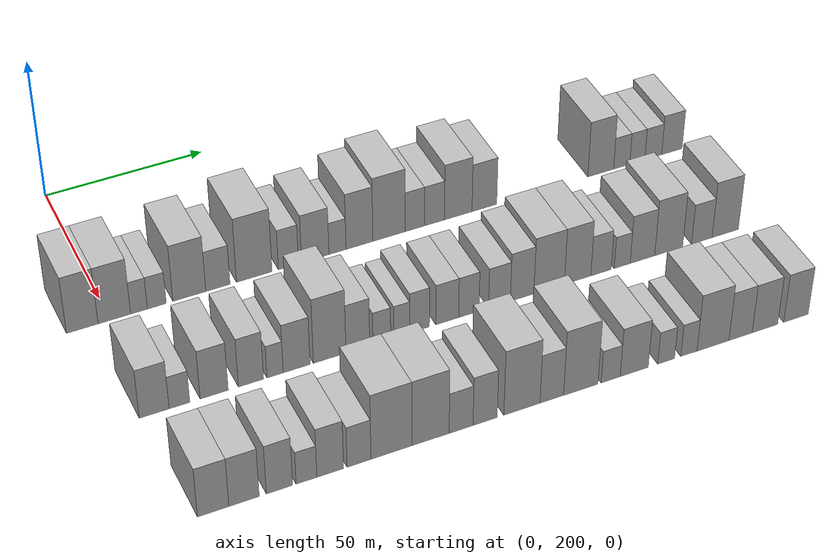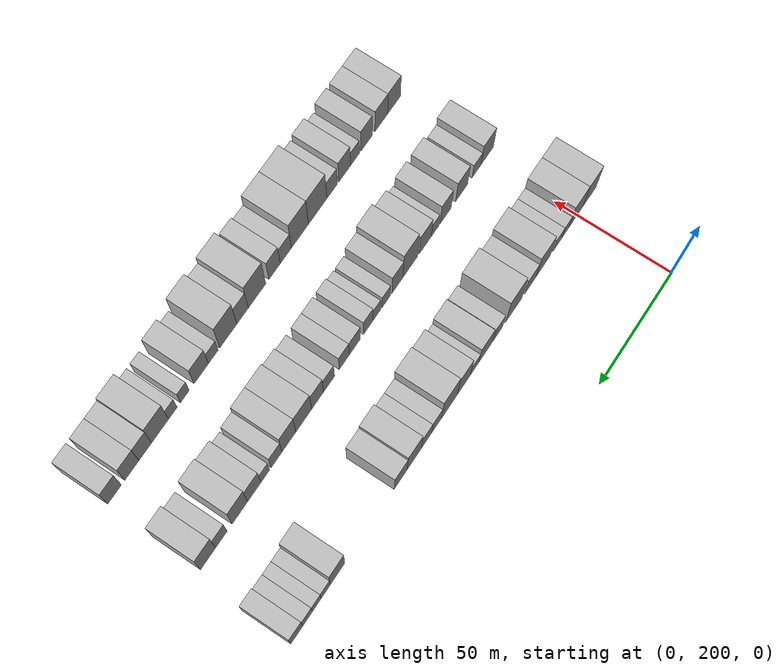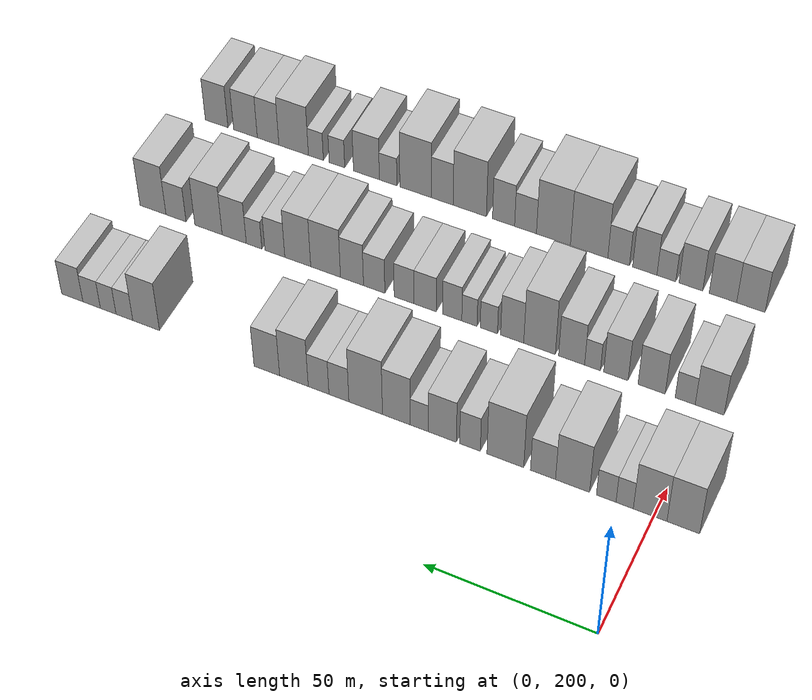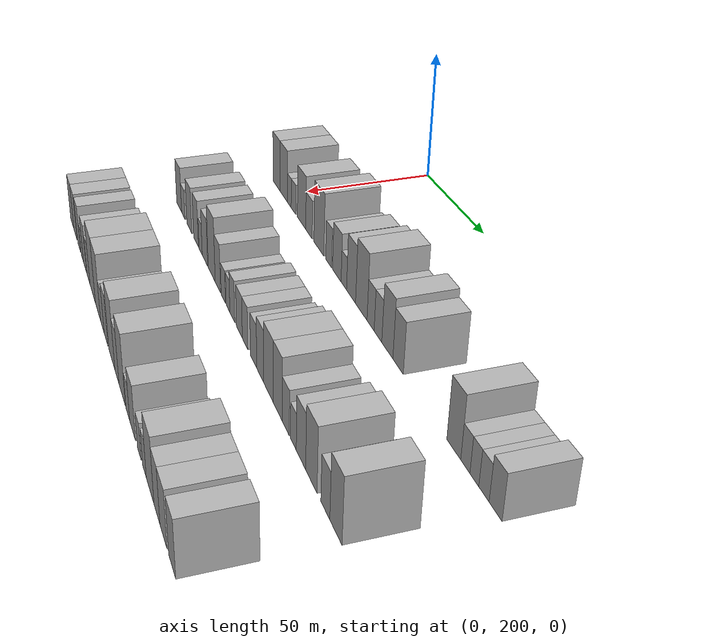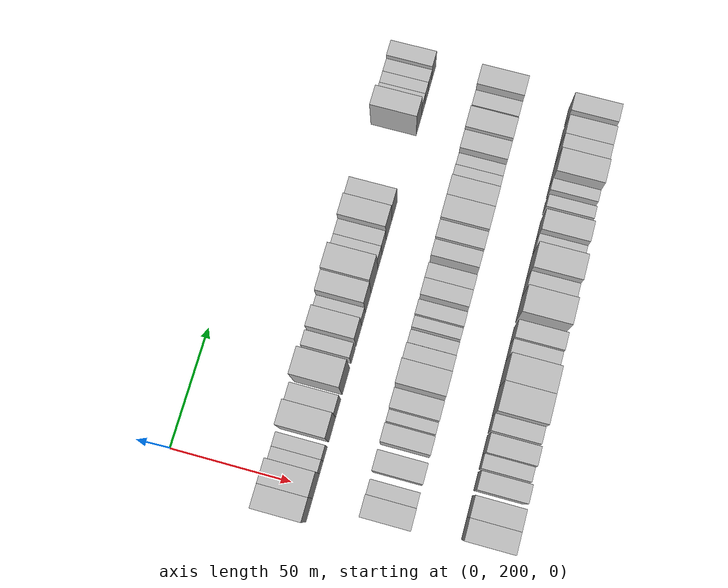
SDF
<sdf version="1.6">
 <world name="default">
  <model name="building_66">
   <static>1</static>
   <pose>50.0000 191.6155 0 0.000000 0.000000 0.000000</pose>
   <link name="link">
    <pose>0 0 10.50 0 0 0</pose>
    <collision name="collision"><geometry><box><size>20.0000 9.3782 21.0000</size></box></geometry></collision>
    <visual name="visual">
     <cast_shadows>0</cast_shadows>
     <geometry><box><size>20.0000 9.3782 21.0000</size></box></geometry>
     <material>
      <script>
       <uri>model://HANNAS_wall/materials/scripts</uri>
       <uri>model://HANNAS_wall/materials/textures</uri>
       <name>vrc/HANNAS_wall</name>
      </script>
     </material>
    </visual>
   </link>
  </model>
  <model name="building_67">
   <static>1</static>
   <pose>50.0000 201.1625 0 0.000000 0.000000 0.000000</pose>
   <link name="link">
    <pose>0 0 10.50 0 0 0</pose>
    <collision name="collision"><geometry><box><size>20.0000 9.7158 21.0000</size></box></geometry></collision>
    <visual name="visual">
     <cast_shadows>0</cast_shadows>
     <geometry><box><size>20.0000 9.7158 21.0000</size></box></geometry>
     <material>
      <script>
       <uri>model://HANNAS_wall/materials/scripts</uri>
       <uri>model://HANNAS_wall/materials/textures</uri>
       <name>vrc/HANNAS_wall</name>
      </script>
     </material>
    </visual>
   </link>
  </model>
  <model name="building_68">
   <static>1</static>
   <pose>50.0000 208.5325 0 0.000000 0.000000 0.000000</pose>
   <link name="link">
    <pose>0 0 6.00 0 0 0</pose>
    <collision name="collision"><geometry><box><size>20.0000 5.0242 12.0000</size></box></geometry></collision>
    <visual name="visual">
     <cast_shadows>0</cast_shadows>
     <geometry><box><size>20.0000 5.0242 12.0000</size></box></geometry>
     <material>
      <script>
       <uri>model://HANNAS_wall/materials/scripts</uri>
       <uri>model://HANNAS_wall/materials/textures</uri>
       <name>vrc/HANNAS_wall</name>
      </script>
     </material>
    </visual>
   </link>
  </model>
  <model name="building_69">
   <static>1</static>
   <pose>50.0000 213.9088 0 0.000000 0.000000 0.000000</pose>
   <link name="link">
    <pose>0 0 6.00 0 0 0</pose>
    <collision name="collision"><geometry><box><size>20.0000 5.7283 12.0000</size></box></geometry></collision>
    <visual name="visual">
     <cast_shadows>0</cast_shadows>
     <geometry><box><size>20.0000 5.7283 12.0000</size></box></geometry>
     <material>
      <script>
       <uri>model://HANNAS_wall/materials/scripts</uri>
       <uri>model://HANNAS_wall/materials/textures</uri>
       <name>vrc/HANNAS_wall</name>
      </script>
     </material>
    </visual>
   </link>
  </model>
  <model name="building_70">
   <static>1</static>
   <pose>50.0000 223.7912 0 0.000000 0.000000 0.000000</pose>
   <link name="link">
    <pose>0 0 10.50 0 0 0</pose>
    <collision name="collision"><geometry><box><size>20.0000 10.0367 21.0000</size></box></geometry></collision>
    <visual name="visual">
     <cast_shadows>0</cast_shadows>
     <geometry><box><size>20.0000 10.0367 21.0000</size></box></geometry>
     <material>
      <script>
       <uri>model://HANNAS_wall/materials/scripts</uri>
       <uri>model://HANNAS_wall/materials/textures</uri>
       <name>vrc/HANNAS_wall</name>
      </script>
     </material>
    </visual>
   </link>
  </model>
  <model name="building_71">
   <static>1</static>
   <pose>50.0000 232.5359 0 0.000000 0.000000 0.000000</pose>
   <link name="link">
    <pose>0 0 7.50 0 0 0</pose>
    <collision name="collision"><geometry><box><size>20.0000 7.4527 15.0000</size></box></geometry></collision>
    <visual name="visual">
     <cast_shadows>0</cast_shadows>
     <geometry><box><size>20.0000 7.4527 15.0000</size></box></geometry>
     <material>
      <script>
       <uri>model://HANNAS_wall/materials/scripts</uri>
       <uri>model://HANNAS_wall/materials/textures</uri>
       <name>vrc/HANNAS_wall</name>
      </script>
     </material>
    </visual>
   </link>
  </model>
  <model name="building_72">
   <static>1</static>
   <pose>50.0000 243.7809 0 0.000000 0.000000 0.000000</pose>
   <link name="link">
    <pose>0 0 12.00 0 0 0</pose>
    <collision name="collision"><geometry><box><size>20.0000 11.0372 24.0000</size></box></geometry></collision>
    <visual name="visual">
     <cast_shadows>0</cast_shadows>
     <geometry><box><size>20.0000 11.0372 24.0000</size></box></geometry>
     <material>
      <script>
       <uri>model://HANNAS_wall/materials/scripts</uri>
       <uri>model://HANNAS_wall/materials/textures</uri>
       <name>vrc/HANNAS_wall</name>
      </script>
     </material>
    </visual>
   </link>
  </model>
  <model name="building_73">
   <static>1</static>
   <pose>50.0000 254.4262 0 0.000000 0.000000 0.000000</pose>
   <link name="link">
    <pose>0 0 7.50 0 0 0</pose>
    <collision name="collision"><geometry><box><size>20.0000 6.2534 15.0000</size></box></geometry></collision>
    <visual name="visual">
     <cast_shadows>0</cast_shadows>
     <geometry><box><size>20.0000 6.2534 15.0000</size></box></geometry>
     <material>
      <script>
       <uri>model://HANNAS_wall/materials/scripts</uri>
       <uri>model://HANNAS_wall/materials/textures</uri>
       <name>vrc/HANNAS_wall</name>
      </script>
     </material>
    </visual>
   </link>
  </model>
  <model name="building_74">
   <static>1</static>
   <pose>50.0000 262.8880 0 0.000000 0.000000 0.000000</pose>
   <link name="link">
    <pose>0 0 9.00 0 0 0</pose>
    <collision name="collision"><geometry><box><size>20.0000 8.6704 18.0000</size></box></geometry></collision>
    <visual name="visual">
     <cast_shadows>0</cast_shadows>
     <geometry><box><size>20.0000 8.6704 18.0000</size></box></geometry>
     <material>
      <script>
       <uri>model://HANNAS_wall/materials/scripts</uri>
       <uri>model://HANNAS_wall/materials/textures</uri>
       <name>vrc/HANNAS_wall</name>
      </script>
     </material>
    </visual>
   </link>
  </model>
  <model name="building_75">
   <static>1</static>
   <pose>50.0000 269.9384 0 0.000000 0.000000 0.000000</pose>
   <link name="link">
    <pose>0 0 6.00 0 0 0</pose>
    <collision name="collision"><geometry><box><size>20.0000 5.4303 12.0000</size></box></geometry></collision>
    <visual name="visual">
     <cast_shadows>0</cast_shadows>
     <geometry><box><size>20.0000 5.4303 12.0000</size></box></geometry>
     <material>
      <script>
       <uri>model://HANNAS_wall/materials/scripts</uri>
       <uri>model://HANNAS_wall/materials/textures</uri>
       <name>vrc/HANNAS_wall</name>
      </script>
     </material>
    </visual>
   </link>
  </model>
  <model name="building_76">
   <static>1</static>
   <pose>50.0000 276.9479 0 0.000000 0.000000 0.000000</pose>
   <link name="link">
    <pose>0 0 10.50 0 0 0</pose>
    <collision name="collision"><geometry><box><size>20.0000 8.5889 21.0000</size></box></geometry></collision>
    <visual name="visual">
     <cast_shadows>0</cast_shadows>
     <geometry><box><size>20.0000 8.5889 21.0000</size></box></geometry>
     <material>
      <script>
       <uri>model://HANNAS_wall/materials/scripts</uri>
       <uri>model://HANNAS_wall/materials/textures</uri>
       <name>vrc/HANNAS_wall</name>
      </script>
     </material>
    </visual>
   </link>
  </model>
  <model name="building_77">
   <static>1</static>
   <pose>50.0000 286.4827 0 0.000000 0.000000 0.000000</pose>
   <link name="link">
    <pose>0 0 12.00 0 0 0</pose>
    <collision name="collision"><geometry><box><size>20.0000 10.4808 24.0000</size></box></geometry></collision>
    <visual name="visual">
     <cast_shadows>0</cast_shadows>
     <geometry><box><size>20.0000 10.4808 24.0000</size></box></geometry>
     <material>
      <script>
       <uri>model://HANNAS_wall/materials/scripts</uri>
       <uri>model://HANNAS_wall/materials/textures</uri>
       <name>vrc/HANNAS_wall</name>
      </script>
     </material>
    </visual>
   </link>
  </model>
  <model name="building_78">
   <static>1</static>
   <pose>50.0000 294.8551 0 0.000000 0.000000 0.000000</pose>
   <link name="link">
    <pose>0 0 7.50 0 0 0</pose>
    <collision name="collision"><geometry><box><size>20.0000 6.2639 15.0000</size></box></geometry></collision>
    <visual name="visual">
     <cast_shadows>0</cast_shadows>
     <geometry><box><size>20.0000 6.2639 15.0000</size></box></geometry>
     <material>
      <script>
       <uri>model://HANNAS_wall/materials/scripts</uri>
       <uri>model://HANNAS_wall/materials/textures</uri>
       <name>vrc/HANNAS_wall</name>
      </script>
     </material>
    </visual>
   </link>
  </model>
  <model name="building_79">
   <static>1</static>
   <pose>50.0000 301.2494 0 0.000000 0.000000 0.000000</pose>
   <link name="link">
    <pose>0 0 7.50 0 0 0</pose>
    <collision name="collision"><geometry><box><size>20.0000 6.5247 15.0000</size></box></geometry></collision>
    <visual name="visual">
     <cast_shadows>0</cast_shadows>
     <geometry><box><size>20.0000 6.5247 15.0000</size></box></geometry>
     <material>
      <script>
       <uri>model://HANNAS_wall/materials/scripts</uri>
       <uri>model://HANNAS_wall/materials/textures</uri>
       <name>vrc/HANNAS_wall</name>
      </script>
     </material>
    </visual>
   </link>
  </model>
  <model name="building_80">
   <static>1</static>
   <pose>50.0000 309.0595 0 0.000000 0.000000 0.000000</pose>
   <link name="link">
    <pose>0 0 10.50 0 0 0</pose>
    <collision name="collision"><geometry><box><size>20.0000 9.0953 21.0000</size></box></geometry></collision>
    <visual name="visual">
     <cast_shadows>0</cast_shadows>
     <geometry><box><size>20.0000 9.0953 21.0000</size></box></geometry>
     <material>
      <script>
       <uri>model://HANNAS_wall/materials/scripts</uri>
       <uri>model://HANNAS_wall/materials/textures</uri>
       <name>vrc/HANNAS_wall</name>
      </script>
     </material>
    </visual>
   </link>
  </model>
  <model name="building_81">
   <static>1</static>
   <pose>50.0000 317.7031 0 0.000000 0.000000 0.000000</pose>
   <link name="link">
    <pose>0 0 9.00 0 0 0</pose>
    <collision name="collision"><geometry><box><size>20.0000 8.1920 18.0000</size></box></geometry></collision>
    <visual name="visual">
     <cast_shadows>0</cast_shadows>
     <geometry><box><size>20.0000 8.1920 18.0000</size></box></geometry>
     <material>
      <script>
       <uri>model://HANNAS_wall/materials/scripts</uri>
       <uri>model://HANNAS_wall/materials/textures</uri>
       <name>vrc/HANNAS_wall</name>
      </script>
     </material>
    </visual>
   </link>
  </model>
  <model name="building_82">
   <static>1</static>
   <pose>50.0000 357.0571 0 0.000000 0.000000 0.000000</pose>
   <link name="link">
    <pose>0 0 10.50 0 0 0</pose>
    <collision name="collision"><geometry><box><size>20.0000 8.8386 21.0000</size></box></geometry></collision>
    <visual name="visual">
     <cast_shadows>0</cast_shadows>
     <geometry><box><size>20.0000 8.8386 21.0000</size></box></geometry>
     <material>
      <script>
       <uri>model://HANNAS_wall/materials/scripts</uri>
       <uri>model://HANNAS_wall/materials/textures</uri>
       <name>vrc/HANNAS_wall</name>
      </script>
     </material>
    </visual>
   </link>
  </model>
  <model name="building_83">
   <static>1</static>
   <pose>50.0000 364.2721 0 0.000000 0.000000 0.000000</pose>
   <link name="link">
    <pose>0 0 6.00 0 0 0</pose>
    <collision name="collision"><geometry><box><size>20.0000 5.5914 12.0000</size></box></geometry></collision>
    <visual name="visual">
     <cast_shadows>0</cast_shadows>
     <geometry><box><size>20.0000 5.5914 12.0000</size></box></geometry>
     <material>
      <script>
       <uri>model://HANNAS_wall/materials/scripts</uri>
       <uri>model://HANNAS_wall/materials/textures</uri>
       <name>vrc/HANNAS_wall</name>
      </script>
     </material>
    </visual>
   </link>
  </model>
  <model name="building_84">
   <static>1</static>
   <pose>50.0000 369.6915 0 0.000000 0.000000 0.000000</pose>
   <link name="link">
    <pose>0 0 6.00 0 0 0</pose>
    <collision name="collision"><geometry><box><size>20.0000 5.2472 12.0000</size></box></geometry></collision>
    <visual name="visual">
     <cast_shadows>0</cast_shadows>
     <geometry><box><size>20.0000 5.2472 12.0000</size></box></geometry>
     <material>
      <script>
       <uri>model://HANNAS_wall/materials/scripts</uri>
       <uri>model://HANNAS_wall/materials/textures</uri>
       <name>vrc/HANNAS_wall</name>
      </script>
     </material>
    </visual>
   </link>
  </model>
  <model name="building_85">
   <static>1</static>
   <pose>50.0000 375.2615 0 0.000000 0.000000 0.000000</pose>
   <link name="link">
    <pose>0 0 6.00 0 0 0</pose>
    <collision name="collision"><geometry><box><size>20.0000 5.8929 12.0000</size></box></geometry></collision>
    <visual name="visual">
     <cast_shadows>0</cast_shadows>
     <geometry><box><size>20.0000 5.8929 12.0000</size></box></geometry>
     <material>
      <script>
       <uri>model://HANNAS_wall/materials/scripts</uri>
       <uri>model://HANNAS_wall/materials/textures</uri>
       <name>vrc/HANNAS_wall</name>
      </script>
     </material>
    </visual>
   </link>
  </model>
  <model name="building_86">
   <static>1</static>
   <pose>50.0000 381.7926 0 0.000000 0.000000 0.000000</pose>
   <link name="link">
    <pose>0 0 7.50 0 0 0</pose>
    <collision name="collision"><geometry><box><size>20.0000 7.1693 15.0000</size></box></geometry></collision>
    <visual name="visual">
     <cast_shadows>0</cast_shadows>
     <geometry><box><size>20.0000 7.1693 15.0000</size></box></geometry>
     <material>
      <script>
       <uri>model://HANNAS_wall/materials/scripts</uri>
       <uri>model://HANNAS_wall/materials/textures</uri>
       <name>vrc/HANNAS_wall</name>
      </script>
     </material>
    </visual>
   </link>
  </model>
  <model name="building_153">
   <static>1</static>
   <pose>90.0000 198.7919 0 0.000000 0.000000 0.000000</pose>
   <link name="link">
    <pose>0 0 9.00 0 0 0</pose>
    <collision name="collision"><geometry><box><size>20.0000 8.6004 18.0000</size></box></geometry></collision>
    <visual name="visual">
     <cast_shadows>0</cast_shadows>
     <geometry><box><size>20.0000 8.6004 18.0000</size></box></geometry>
     <material>
      <script>
       <uri>model://HANNAS_wall/materials/scripts</uri>
       <uri>model://HANNAS_wall/materials/textures</uri>
       <name>vrc/HANNAS_wall</name>
      </script>
     </material>
    </visual>
   </link>
  </model>
  <model name="building_154">
   <static>1</static>
   <pose>90.0000 206.0868 0 0.000000 0.000000 0.000000</pose>
   <link name="link">
    <pose>0 0 6.00 0 0 0</pose>
    <collision name="collision"><geometry><box><size>20.0000 5.9893 12.0000</size></box></geometry></collision>
    <visual name="visual">
     <cast_shadows>0</cast_shadows>
     <geometry><box><size>20.0000 5.9893 12.0000</size></box></geometry>
     <material>
      <script>
       <uri>model://HANNAS_wall/materials/scripts</uri>
       <uri>model://HANNAS_wall/materials/textures</uri>
       <name>vrc/HANNAS_wall</name>
      </script>
     </material>
    </visual>
   </link>
  </model>
  <model name="building_155">
   <static>1</static>
   <pose>90.0000 216.1897 0 0.000000 0.000000 0.000000</pose>
   <link name="link">
    <pose>0 0 9.00 0 0 0</pose>
    <collision name="collision"><geometry><box><size>20.0000 8.2166 18.0000</size></box></geometry></collision>
    <visual name="visual">
     <cast_shadows>0</cast_shadows>
     <geometry><box><size>20.0000 8.2166 18.0000</size></box></geometry>
     <material>
      <script>
       <uri>model://HANNAS_wall/materials/scripts</uri>
       <uri>model://HANNAS_wall/materials/textures</uri>
       <name>vrc/HANNAS_wall</name>
      </script>
     </material>
    </visual>
   </link>
  </model>
  <model name="building_156">
   <static>1</static>
   <pose>90.0000 227.0205 0 0.000000 0.000000 0.000000</pose>
   <link name="link">
    <pose>0 0 9.00 0 0 0</pose>
    <collision name="collision"><geometry><box><size>20.0000 7.4451 18.0000</size></box></geometry></collision>
    <visual name="visual">
     <cast_shadows>0</cast_shadows>
     <geometry><box><size>20.0000 7.4451 18.0000</size></box></geometry>
     <material>
      <script>
       <uri>model://HANNAS_wall/materials/scripts</uri>
       <uri>model://HANNAS_wall/materials/textures</uri>
       <name>vrc/HANNAS_wall</name>
      </script>
     </material>
    </visual>
   </link>
  </model>
  <model name="building_157">
   <static>1</static>
   <pose>90.0000 234.1643 0 0.000000 0.000000 0.000000</pose>
   <link name="link">
    <pose>0 0 6.00 0 0 0</pose>
    <collision name="collision"><geometry><box><size>20.0000 4.8424 12.0000</size></box></geometry></collision>
    <visual name="visual">
     <cast_shadows>0</cast_shadows>
     <geometry><box><size>20.0000 4.8424 12.0000</size></box></geometry>
     <material>
      <script>
       <uri>model://HANNAS_wall/materials/scripts</uri>
       <uri>model://HANNAS_wall/materials/textures</uri>
       <name>vrc/HANNAS_wall</name>
      </script>
     </material>
    </visual>
   </link>
  </model>
  <model name="building_158">
   <static>1</static>
   <pose>90.0000 240.6040 0 0.000000 0.000000 0.000000</pose>
   <link name="link">
    <pose>0 0 9.00 0 0 0</pose>
    <collision name="collision"><geometry><box><size>20.0000 8.0371 18.0000</size></box></geometry></collision>
    <visual name="visual">
     <cast_shadows>0</cast_shadows>
     <geometry><box><size>20.0000 8.0371 18.0000</size></box></geometry>
     <material>
      <script>
       <uri>model://HANNAS_wall/materials/scripts</uri>
       <uri>model://HANNAS_wall/materials/textures</uri>
       <name>vrc/HANNAS_wall</name>
      </script>
     </material>
    </visual>
   </link>
  </model>
  <model name="building_159">
   <static>1</static>
   <pose>90.0000 250.5454 0 0.000000 0.000000 0.000000</pose>
   <link name="link">
    <pose>0 0 12.00 0 0 0</pose>
    <collision name="collision"><geometry><box><size>20.0000 9.8456 24.0000</size></box></geometry></collision>
    <visual name="visual">
     <cast_shadows>0</cast_shadows>
     <geometry><box><size>20.0000 9.8456 24.0000</size></box></geometry>
     <material>
      <script>
       <uri>model://HANNAS_wall/materials/scripts</uri>
       <uri>model://HANNAS_wall/materials/textures</uri>
       <name>vrc/HANNAS_wall</name>
      </script>
     </material>
    </visual>
   </link>
  </model>
  <model name="building_160">
   <static>1</static>
   <pose>90.0000 259.0888 0 0.000000 0.000000 0.000000</pose>
   <link name="link">
    <pose>0 0 9.00 0 0 0</pose>
    <collision name="collision"><geometry><box><size>20.0000 7.2412 18.0000</size></box></geometry></collision>
    <visual name="visual">
     <cast_shadows>0</cast_shadows>
     <geometry><box><size>20.0000 7.2412 18.0000</size></box></geometry>
     <material>
      <script>
       <uri>model://HANNAS_wall/materials/scripts</uri>
       <uri>model://HANNAS_wall/materials/textures</uri>
       <name>vrc/HANNAS_wall</name>
      </script>
     </material>
    </visual>
   </link>
  </model>
  <model name="building_161">
   <static>1</static>
   <pose>90.0000 266.4269 0 0.000000 0.000000 0.000000</pose>
   <link name="link">
    <pose>0 0 6.00 0 0 0</pose>
    <collision name="collision"><geometry><box><size>20.0000 5.4351 12.0000</size></box></geometry></collision>
    <visual name="visual">
     <cast_shadows>0</cast_shadows>
     <geometry><box><size>20.0000 5.4351 12.0000</size></box></geometry>
     <material>
      <script>
       <uri>model://HANNAS_wall/materials/scripts</uri>
       <uri>model://HANNAS_wall/materials/textures</uri>
       <name>vrc/HANNAS_wall</name>
      </script>
     </material>
    </visual>
   </link>
  </model>
  <model name="building_162">
   <static>1</static>
   <pose>90.0000 272.5635 0 0.000000 0.000000 0.000000</pose>
   <link name="link">
    <pose>0 0 6.00 0 0 0</pose>
    <collision name="collision"><geometry><box><size>20.0000 4.8381 12.0000</size></box></geometry></collision>
    <visual name="visual">
     <cast_shadows>0</cast_shadows>
     <geometry><box><size>20.0000 4.8381 12.0000</size></box></geometry>
     <material>
      <script>
       <uri>model://HANNAS_wall/materials/scripts</uri>
       <uri>model://HANNAS_wall/materials/textures</uri>
       <name>vrc/HANNAS_wall</name>
      </script>
     </material>
    </visual>
   </link>
  </model>
  <model name="building_163">
   <static>1</static>
   <pose>90.0000 278.0547 0 0.000000 0.000000 0.000000</pose>
   <link name="link">
    <pose>0 0 7.50 0 0 0</pose>
    <collision name="collision"><geometry><box><size>20.0000 6.1442 15.0000</size></box></geometry></collision>
    <visual name="visual">
     <cast_shadows>0</cast_shadows>
     <geometry><box><size>20.0000 6.1442 15.0000</size></box></geometry>
     <material>
      <script>
       <uri>model://HANNAS_wall/materials/scripts</uri>
       <uri>model://HANNAS_wall/materials/textures</uri>
       <name>vrc/HANNAS_wall</name>
      </script>
     </material>
    </visual>
   </link>
  </model>
  <model name="building_164">
   <static>1</static>
   <pose>90.0000 286.6893 0 0.000000 0.000000 0.000000</pose>
   <link name="link">
    <pose>0 0 7.50 0 0 0</pose>
    <collision name="collision"><geometry><box><size>20.0000 7.1249 15.0000</size></box></geometry></collision>
    <visual name="visual">
     <cast_shadows>0</cast_shadows>
     <geometry><box><size>20.0000 7.1249 15.0000</size></box></geometry>
     <material>
      <script>
       <uri>model://HANNAS_wall/materials/scripts</uri>
       <uri>model://HANNAS_wall/materials/textures</uri>
       <name>vrc/HANNAS_wall</name>
      </script>
     </material>
    </visual>
   </link>
  </model>
  <model name="building_165">
   <static>1</static>
   <pose>90.0000 293.4658 0 0.000000 0.000000 0.000000</pose>
   <link name="link">
    <pose>0 0 7.50 0 0 0</pose>
    <collision name="collision"><geometry><box><size>20.0000 6.4281 15.0000</size></box></geometry></collision>
    <visual name="visual">
     <cast_shadows>0</cast_shadows>
     <geometry><box><size>20.0000 6.4281 15.0000</size></box></geometry>
     <material>
      <script>
       <uri>model://HANNAS_wall/materials/scripts</uri>
       <uri>model://HANNAS_wall/materials/textures</uri>
       <name>vrc/HANNAS_wall</name>
      </script>
     </material>
    </visual>
   </link>
  </model>
  <model name="building_166">
   <static>1</static>
   <pose>90.0000 303.1540 0 0.000000 0.000000 0.000000</pose>
   <link name="link">
    <pose>0 0 7.50 0 0 0</pose>
    <collision name="collision"><geometry><box><size>20.0000 6.9483 15.0000</size></box></geometry></collision>
    <visual name="visual">
     <cast_shadows>0</cast_shadows>
     <geometry><box><size>20.0000 6.9483 15.0000</size></box></geometry>
     <material>
      <script>
       <uri>model://HANNAS_wall/materials/scripts</uri>
       <uri>model://HANNAS_wall/materials/textures</uri>
       <name>vrc/HANNAS_wall</name>
      </script>
     </material>
    </visual>
   </link>
  </model>
  <model name="building_167">
   <static>1</static>
   <pose>90.0000 310.3989 0 0.000000 0.000000 0.000000</pose>
   <link name="link">
    <pose>0 0 9.00 0 0 0</pose>
    <collision name="collision"><geometry><box><size>20.0000 7.5414 18.0000</size></box></geometry></collision>
    <visual name="visual">
     <cast_shadows>0</cast_shadows>
     <geometry><box><size>20.0000 7.5414 18.0000</size></box></geometry>
     <material>
      <script>
       <uri>model://HANNAS_wall/materials/scripts</uri>
       <uri>model://HANNAS_wall/materials/textures</uri>
       <name>vrc/HANNAS_wall</name>
      </script>
     </material>
    </visual>
   </link>
  </model>
  <model name="building_168">
   <static>1</static>
   <pose>90.0000 319.0830 0 0.000000 0.000000 0.000000</pose>
   <link name="link">
    <pose>0 0 10.50 0 0 0</pose>
    <collision name="collision"><geometry><box><size>20.0000 9.8268 21.0000</size></box></geometry></collision>
    <visual name="visual">
     <cast_shadows>0</cast_shadows>
     <geometry><box><size>20.0000 9.8268 21.0000</size></box></geometry>
     <material>
      <script>
       <uri>model://HANNAS_wall/materials/scripts</uri>
       <uri>model://HANNAS_wall/materials/textures</uri>
       <name>vrc/HANNAS_wall</name>
      </script>
     </material>
    </visual>
   </link>
  </model>
  <model name="building_169">
   <static>1</static>
   <pose>90.0000 328.3016 0 0.000000 0.000000 0.000000</pose>
   <link name="link">
    <pose>0 0 10.50 0 0 0</pose>
    <collision name="collision"><geometry><box><size>20.0000 8.6104 21.0000</size></box></geometry></collision>
    <visual name="visual">
     <cast_shadows>0</cast_shadows>
     <geometry><box><size>20.0000 8.6104 21.0000</size></box></geometry>
     <material>
      <script>
       <uri>model://HANNAS_wall/materials/scripts</uri>
       <uri>model://HANNAS_wall/materials/textures</uri>
       <name>vrc/HANNAS_wall</name>
      </script>
     </material>
    </visual>
   </link>
  </model>
  <model name="building_170">
   <static>1</static>
   <pose>90.0000 335.9367 0 0.000000 0.000000 0.000000</pose>
   <link name="link">
    <pose>0 0 7.50 0 0 0</pose>
    <collision name="collision"><geometry><box><size>20.0000 6.6599 15.0000</size></box></geometry></collision>
    <visual name="visual">
     <cast_shadows>0</cast_shadows>
     <geometry><box><size>20.0000 6.6599 15.0000</size></box></geometry>
     <material>
      <script>
       <uri>model://HANNAS_wall/materials/scripts</uri>
       <uri>model://HANNAS_wall/materials/textures</uri>
       <name>vrc/HANNAS_wall</name>
      </script>
     </material>
    </visual>
   </link>
  </model>
  <model name="building_171">
   <static>1</static>
   <pose>90.0000 342.8944 0 0.000000 0.000000 0.000000</pose>
   <link name="link">
    <pose>0 0 6.00 0 0 0</pose>
    <collision name="collision"><geometry><box><size>20.0000 5.2555 12.0000</size></box></geometry></collision>
    <visual name="visual">
     <cast_shadows>0</cast_shadows>
     <geometry><box><size>20.0000 5.2555 12.0000</size></box></geometry>
     <material>
      <script>
       <uri>model://HANNAS_wall/materials/scripts</uri>
       <uri>model://HANNAS_wall/materials/textures</uri>
       <name>vrc/HANNAS_wall</name>
      </script>
     </material>
    </visual>
   </link>
  </model>
  <model name="building_172">
   <static>1</static>
   <pose>90.0000 349.5987 0 0.000000 0.000000 0.000000</pose>
   <link name="link">
    <pose>0 0 9.00 0 0 0</pose>
    <collision name="collision"><geometry><box><size>20.0000 8.1531 18.0000</size></box></geometry></collision>
    <visual name="visual">
     <cast_shadows>0</cast_shadows>
     <geometry><box><size>20.0000 8.1531 18.0000</size></box></geometry>
     <material>
      <script>
       <uri>model://HANNAS_wall/materials/scripts</uri>
       <uri>model://HANNAS_wall/materials/textures</uri>
       <name>vrc/HANNAS_wall</name>
      </script>
     </material>
    </visual>
   </link>
  </model>
  <model name="building_173">
   <static>1</static>
   <pose>90.0000 358.3449 0 0.000000 0.000000 0.000000</pose>
   <link name="link">
    <pose>0 0 10.50 0 0 0</pose>
    <collision name="collision"><geometry><box><size>20.0000 9.3394 21.0000</size></box></geometry></collision>
    <visual name="visual">
     <cast_shadows>0</cast_shadows>
     <geometry><box><size>20.0000 9.3394 21.0000</size></box></geometry>
     <material>
      <script>
       <uri>model://HANNAS_wall/materials/scripts</uri>
       <uri>model://HANNAS_wall/materials/textures</uri>
       <name>vrc/HANNAS_wall</name>
      </script>
     </material>
    </visual>
   </link>
  </model>
  <model name="building_174">
   <static>1</static>
   <pose>90.0000 369.4735 0 0.000000 0.000000 0.000000</pose>
   <link name="link">
    <pose>0 0 7.50 0 0 0</pose>
    <collision name="collision"><geometry><box><size>20.0000 6.9177 15.0000</size></box></geometry></collision>
    <visual name="visual">
     <cast_shadows>0</cast_shadows>
     <geometry><box><size>20.0000 6.9177 15.0000</size></box></geometry>
     <material>
      <script>
       <uri>model://HANNAS_wall/materials/scripts</uri>
       <uri>model://HANNAS_wall/materials/textures</uri>
       <name>vrc/HANNAS_wall</name>
      </script>
     </material>
    </visual>
   </link>
  </model>
  <model name="building_175">
   <static>1</static>
   <pose>90.0000 377.4146 0 0.000000 0.000000 0.000000</pose>
   <link name="link">
    <pose>0 0 10.50 0 0 0</pose>
    <collision name="collision"><geometry><box><size>20.0000 8.9647 21.0000</size></box></geometry></collision>
    <visual name="visual">
     <cast_shadows>0</cast_shadows>
     <geometry><box><size>20.0000 8.9647 21.0000</size></box></geometry>
     <material>
      <script>
       <uri>model://HANNAS_wall/materials/scripts</uri>
       <uri>model://HANNAS_wall/materials/textures</uri>
       <name>vrc/HANNAS_wall</name>
      </script>
     </material>
    </visual>
   </link>
  </model>
  <model name="building_241">
   <static>1</static>
   <pose>130.0000 200.7178 0 0.000000 0.000000 0.000000</pose>
   <link name="link">
    <pose>0 0 9.00 0 0 0</pose>
    <collision name="collision"><geometry><box><size>20.0000 8.7261 18.0000</size></box></geometry></collision>
    <visual name="visual">
     <cast_shadows>0</cast_shadows>
     <geometry><box><size>20.0000 8.7261 18.0000</size></box></geometry>
     <material>
      <script>
       <uri>model://HANNAS_wall/materials/scripts</uri>
       <uri>model://HANNAS_wall/materials/textures</uri>
       <name>vrc/HANNAS_wall</name>
      </script>
     </material>
    </visual>
   </link>
  </model>
  <model name="building_242">
   <static>1</static>
   <pose>130.0000 209.3386 0 0.000000 0.000000 0.000000</pose>
   <link name="link">
    <pose>0 0 9.00 0 0 0</pose>
    <collision name="collision"><geometry><box><size>20.0000 8.5156 18.0000</size></box></geometry></collision>
    <visual name="visual">
     <cast_shadows>0</cast_shadows>
     <geometry><box><size>20.0000 8.5156 18.0000</size></box></geometry>
     <material>
      <script>
       <uri>model://HANNAS_wall/materials/scripts</uri>
       <uri>model://HANNAS_wall/materials/textures</uri>
       <name>vrc/HANNAS_wall</name>
      </script>
     </material>
    </visual>
   </link>
  </model>
  <model name="building_243">
   <static>1</static>
   <pose>130.0000 219.3049 0 0.000000 0.000000 0.000000</pose>
   <link name="link">
    <pose>0 0 9.00 0 0 0</pose>
    <collision name="collision"><geometry><box><size>20.0000 7.4170 18.0000</size></box></geometry></collision>
    <visual name="visual">
     <cast_shadows>0</cast_shadows>
     <geometry><box><size>20.0000 7.4170 18.0000</size></box></geometry>
     <material>
      <script>
       <uri>model://HANNAS_wall/materials/scripts</uri>
       <uri>model://HANNAS_wall/materials/textures</uri>
       <name>vrc/HANNAS_wall</name>
      </script>
     </material>
    </visual>
   </link>
  </model>
  <model name="building_244">
   <static>1</static>
   <pose>130.0000 226.9748 0 0.000000 0.000000 0.000000</pose>
   <link name="link">
    <pose>0 0 6.00 0 0 0</pose>
    <collision name="collision"><geometry><box><size>20.0000 5.9228 12.0000</size></box></geometry></collision>
    <visual name="visual">
     <cast_shadows>0</cast_shadows>
     <geometry><box><size>20.0000 5.9228 12.0000</size></box></geometry>
     <material>
      <script>
       <uri>model://HANNAS_wall/materials/scripts</uri>
       <uri>model://HANNAS_wall/materials/textures</uri>
       <name>vrc/HANNAS_wall</name>
      </script>
     </material>
    </visual>
   </link>
  </model>
  <model name="building_245">
   <static>1</static>
   <pose>130.0000 233.7835 0 0.000000 0.000000 0.000000</pose>
   <link name="link">
    <pose>0 0 9.00 0 0 0</pose>
    <collision name="collision"><geometry><box><size>20.0000 7.6945 18.0000</size></box></geometry></collision>
    <visual name="visual">
     <cast_shadows>0</cast_shadows>
     <geometry><box><size>20.0000 7.6945 18.0000</size></box></geometry>
     <material>
      <script>
       <uri>model://HANNAS_wall/materials/scripts</uri>
       <uri>model://HANNAS_wall/materials/textures</uri>
       <name>vrc/HANNAS_wall</name>
      </script>
     </material>
    </visual>
   </link>
  </model>
  <model name="building_246">
   <static>1</static>
   <pose>130.0000 242.0843 0 0.000000 0.000000 0.000000</pose>
   <link name="link">
    <pose>0 0 7.50 0 0 0</pose>
    <collision name="collision"><geometry><box><size>20.0000 6.9072 15.0000</size></box></geometry></collision>
    <visual name="visual">
     <cast_shadows>0</cast_shadows>
     <geometry><box><size>20.0000 6.9072 15.0000</size></box></geometry>
     <material>
      <script>
       <uri>model://HANNAS_wall/materials/scripts</uri>
       <uri>model://HANNAS_wall/materials/textures</uri>
       <name>vrc/HANNAS_wall</name>
      </script>
     </material>
    </visual>
   </link>
  </model>
  <model name="building_247">
   <static>1</static>
   <pose>130.0000 251.5273 0 0.000000 0.000000 0.000000</pose>
   <link name="link">
    <pose>0 0 12.00 0 0 0</pose>
    <collision name="collision"><geometry><box><size>20.0000 11.9788 24.0000</size></box></geometry></collision>
    <visual name="visual">
     <cast_shadows>0</cast_shadows>
     <geometry><box><size>20.0000 11.9788 24.0000</size></box></geometry>
     <material>
      <script>
       <uri>model://HANNAS_wall/materials/scripts</uri>
       <uri>model://HANNAS_wall/materials/textures</uri>
       <name>vrc/HANNAS_wall</name>
      </script>
     </material>
    </visual>
   </link>
  </model>
  <model name="building_248">
   <static>1</static>
   <pose>130.0000 263.0190 0 0.000000 0.000000 0.000000</pose>
   <link name="link">
    <pose>0 0 12.00 0 0 0</pose>
    <collision name="collision"><geometry><box><size>20.0000 11.0045 24.0000</size></box></geometry></collision>
    <visual name="visual">
     <cast_shadows>0</cast_shadows>
     <geometry><box><size>20.0000 11.0045 24.0000</size></box></geometry>
     <material>
      <script>
       <uri>model://HANNAS_wall/materials/scripts</uri>
       <uri>model://HANNAS_wall/materials/textures</uri>
       <name>vrc/HANNAS_wall</name>
      </script>
     </material>
    </visual>
   </link>
  </model>
  <model name="building_249">
   <static>1</static>
   <pose>130.0000 272.0866 0 0.000000 0.000000 0.000000</pose>
   <link name="link">
    <pose>0 0 7.50 0 0 0</pose>
    <collision name="collision"><geometry><box><size>20.0000 7.1306 15.0000</size></box></geometry></collision>
    <visual name="visual">
     <cast_shadows>0</cast_shadows>
     <geometry><box><size>20.0000 7.1306 15.0000</size></box></geometry>
     <material>
      <script>
       <uri>model://HANNAS_wall/materials/scripts</uri>
       <uri>model://HANNAS_wall/materials/textures</uri>
       <name>vrc/HANNAS_wall</name>
      </script>
     </material>
    </visual>
   </link>
  </model>
  <model name="building_250">
   <static>1</static>
   <pose>130.0000 279.2814 0 0.000000 0.000000 0.000000</pose>
   <link name="link">
    <pose>0 0 9.00 0 0 0</pose>
    <collision name="collision"><geometry><box><size>20.0000 7.2591 18.0000</size></box></geometry></collision>
    <visual name="visual">
     <cast_shadows>0</cast_shadows>
     <geometry><box><size>20.0000 7.2591 18.0000</size></box></geometry>
     <material>
      <script>
       <uri>model://HANNAS_wall/materials/scripts</uri>
       <uri>model://HANNAS_wall/materials/textures</uri>
       <name>vrc/HANNAS_wall</name>
      </script>
     </material>
    </visual>
   </link>
  </model>
  <model name="building_251">
   <static>1</static>
   <pose>130.0000 290.4142 0 0.000000 0.000000 0.000000</pose>
   <link name="link">
    <pose>0 0 12.00 0 0 0</pose>
    <collision name="collision"><geometry><box><size>20.0000 11.0064 24.0000</size></box></geometry></collision>
    <visual name="visual">
     <cast_shadows>0</cast_shadows>
     <geometry><box><size>20.0000 11.0064 24.0000</size></box></geometry>
     <material>
      <script>
       <uri>model://HANNAS_wall/materials/scripts</uri>
       <uri>model://HANNAS_wall/materials/textures</uri>
       <name>vrc/HANNAS_wall</name>
      </script>
     </material>
    </visual>
   </link>
  </model>
  <model name="building_252">
   <static>1</static>
   <pose>130.0000 299.5371 0 0.000000 0.000000 0.000000</pose>
   <link name="link">
    <pose>0 0 9.00 0 0 0</pose>
    <collision name="collision"><geometry><box><size>20.0000 7.2394 18.0000</size></box></geometry></collision>
    <visual name="visual">
     <cast_shadows>0</cast_shadows>
     <geometry><box><size>20.0000 7.2394 18.0000</size></box></geometry>
     <material>
      <script>
       <uri>model://HANNAS_wall/materials/scripts</uri>
       <uri>model://HANNAS_wall/materials/textures</uri>
       <name>vrc/HANNAS_wall</name>
      </script>
     </material>
    </visual>
   </link>
  </model>
  <model name="building_253">
   <static>1</static>
   <pose>130.0000 308.4719 0 0.000000 0.000000 0.000000</pose>
   <link name="link">
    <pose>0 0 12.00 0 0 0</pose>
    <collision name="collision"><geometry><box><size>20.0000 10.6301 24.0000</size></box></geometry></collision>
    <visual name="visual">
     <cast_shadows>0</cast_shadows>
     <geometry><box><size>20.0000 10.6301 24.0000</size></box></geometry>
     <material>
      <script>
       <uri>model://HANNAS_wall/materials/scripts</uri>
       <uri>model://HANNAS_wall/materials/textures</uri>
       <name>vrc/HANNAS_wall</name>
      </script>
     </material>
    </visual>
   </link>
  </model>
  <model name="building_254">
   <static>1</static>
   <pose>130.0000 317.7558 0 0.000000 0.000000 0.000000</pose>
   <link name="link">
    <pose>0 0 6.00 0 0 0</pose>
    <collision name="collision"><geometry><box><size>20.0000 5.9377 12.0000</size></box></geometry></collision>
    <visual name="visual">
     <cast_shadows>0</cast_shadows>
     <geometry><box><size>20.0000 5.9377 12.0000</size></box></geometry>
     <material>
      <script>
       <uri>model://HANNAS_wall/materials/scripts</uri>
       <uri>model://HANNAS_wall/materials/textures</uri>
       <name>vrc/HANNAS_wall</name>
      </script>
     </material>
    </visual>
   </link>
  </model>
  <model name="building_255">
   <static>1</static>
   <pose>130.0000 325.1326 0 0.000000 0.000000 0.000000</pose>
   <link name="link">
    <pose>0 0 9.00 0 0 0</pose>
    <collision name="collision"><geometry><box><size>20.0000 8.8159 18.0000</size></box></geometry></collision>
    <visual name="visual">
     <cast_shadows>0</cast_shadows>
     <geometry><box><size>20.0000 8.8159 18.0000</size></box></geometry>
     <material>
      <script>
       <uri>model://HANNAS_wall/materials/scripts</uri>
       <uri>model://HANNAS_wall/materials/textures</uri>
       <name>vrc/HANNAS_wall</name>
      </script>
     </material>
    </visual>
   </link>
  </model>
  <model name="building_256">
   <static>1</static>
   <pose>130.0000 335.2058 0 0.000000 0.000000 0.000000</pose>
   <link name="link">
    <pose>0 0 6.00 0 0 0</pose>
    <collision name="collision"><geometry><box><size>20.0000 5.3305 12.0000</size></box></geometry></collision>
    <visual name="visual">
     <cast_shadows>0</cast_shadows>
     <geometry><box><size>20.0000 5.3305 12.0000</size></box></geometry>
     <material>
      <script>
       <uri>model://HANNAS_wall/materials/scripts</uri>
       <uri>model://HANNAS_wall/materials/textures</uri>
       <name>vrc/HANNAS_wall</name>
      </script>
     </material>
    </visual>
   </link>
  </model>
  <model name="building_257">
   <static>1</static>
   <pose>130.0000 342.4570 0 0.000000 0.000000 0.000000</pose>
   <link name="link">
    <pose>0 0 6.00 0 0 0</pose>
    <collision name="collision"><geometry><box><size>20.0000 5.1718 12.0000</size></box></geometry></collision>
    <visual name="visual">
     <cast_shadows>0</cast_shadows>
     <geometry><box><size>20.0000 5.1718 12.0000</size></box></geometry>
     <material>
      <script>
       <uri>model://HANNAS_wall/materials/scripts</uri>
       <uri>model://HANNAS_wall/materials/textures</uri>
       <name>vrc/HANNAS_wall</name>
      </script>
     </material>
    </visual>
   </link>
  </model>
  <model name="building_258">
   <static>1</static>
   <pose>130.0000 350.1745 0 0.000000 0.000000 0.000000</pose>
   <link name="link">
    <pose>0 0 10.50 0 0 0</pose>
    <collision name="collision"><geometry><box><size>20.0000 10.2631 21.0000</size></box></geometry></collision>
    <visual name="visual">
     <cast_shadows>0</cast_shadows>
     <geometry><box><size>20.0000 10.2631 21.0000</size></box></geometry>
     <material>
      <script>
       <uri>model://HANNAS_wall/materials/scripts</uri>
       <uri>model://HANNAS_wall/materials/textures</uri>
       <name>vrc/HANNAS_wall</name>
      </script>
     </material>
    </visual>
   </link>
  </model>
  <model name="building_259">
   <static>1</static>
   <pose>130.0000 359.0818 0 0.000000 0.000000 0.000000</pose>
   <link name="link">
    <pose>0 0 9.00 0 0 0</pose>
    <collision name="collision"><geometry><box><size>20.0000 7.5515 18.0000</size></box></geometry></collision>
    <visual name="visual">
     <cast_shadows>0</cast_shadows>
     <geometry><box><size>20.0000 7.5515 18.0000</size></box></geometry>
     <material>
      <script>
       <uri>model://HANNAS_wall/materials/scripts</uri>
       <uri>model://HANNAS_wall/materials/textures</uri>
       <name>vrc/HANNAS_wall</name>
      </script>
     </material>
    </visual>
   </link>
  </model>
  <model name="building_260">
   <static>1</static>
   <pose>130.0000 367.0336 0 0.000000 0.000000 0.000000</pose>
   <link name="link">
    <pose>0 0 9.00 0 0 0</pose>
    <collision name="collision"><geometry><box><size>20.0000 8.3521 18.0000</size></box></geometry></collision>
    <visual name="visual">
     <cast_shadows>0</cast_shadows>
     <geometry><box><size>20.0000 8.3521 18.0000</size></box></geometry>
     <material>
      <script>
       <uri>model://HANNAS_wall/materials/scripts</uri>
       <uri>model://HANNAS_wall/materials/textures</uri>
       <name>vrc/HANNAS_wall</name>
      </script>
     </material>
    </visual>
   </link>
  </model>
  <model name="building_261">
   <static>1</static>
   <pose>130.0000 377.2323 0 0.000000 0.000000 0.000000</pose>
   <link name="link">
    <pose>0 0 9.00 0 0 0</pose>
    <collision name="collision"><geometry><box><size>20.0000 8.0454 18.0000</size></box></geometry></collision>
    <visual name="visual">
     <cast_shadows>0</cast_shadows>
     <geometry><box><size>20.0000 8.0454 18.0000</size></box></geometry>
     <material>
      <script>
       <uri>model://HANNAS_wall/materials/scripts</uri>
       <uri>model://HANNAS_wall/materials/textures</uri>
       <name>vrc/HANNAS_wall</name>
      </script>
     </material>
    </visual>
   </link>
  </model>
 </world>
</sdf>
